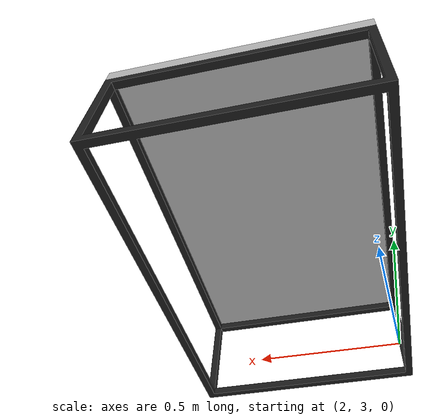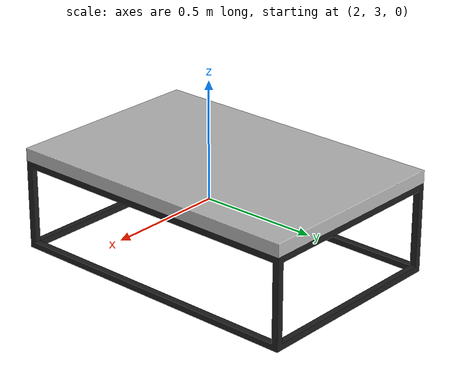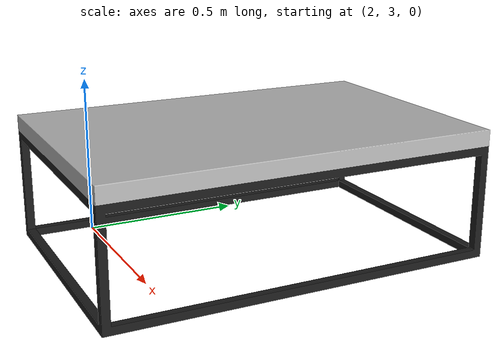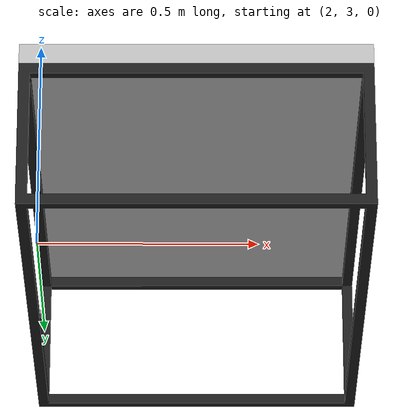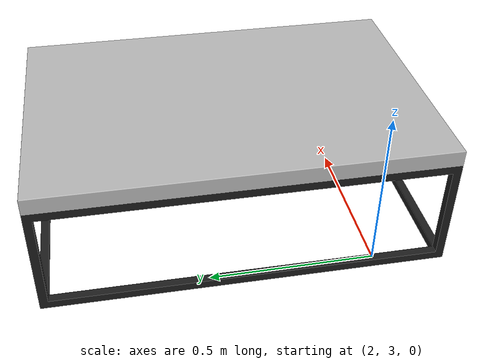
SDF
<?xml version="1.0" ?>
<sdf version="1.4">
  <model name="center_table">
    <pose>2.759101 2.784628 0 0 0 1.562971</pose>
    <link name="link">
     <collision name="collision">
        <pose>0.6 0.385 0.385 0 0 0</pose>
        <geometry>
          <box>
            <size>1.2 0.8 0.04</size>
           </box>
        </geometry>
      </collision>
      <collision name="collision">
        <geometry>
          <mesh>
            <uri>model://center_table/meshes/center_table.dae</uri>
          </mesh>
        </geometry>
      </collision>
      <visual name="visual">
        <geometry>
          <mesh>
            <uri>model://center_table/meshes/center_table.dae</uri>
          </mesh>
        </geometry>
      </visual>
    </link>
    <static>1</static>
  </model>
</sdf>
